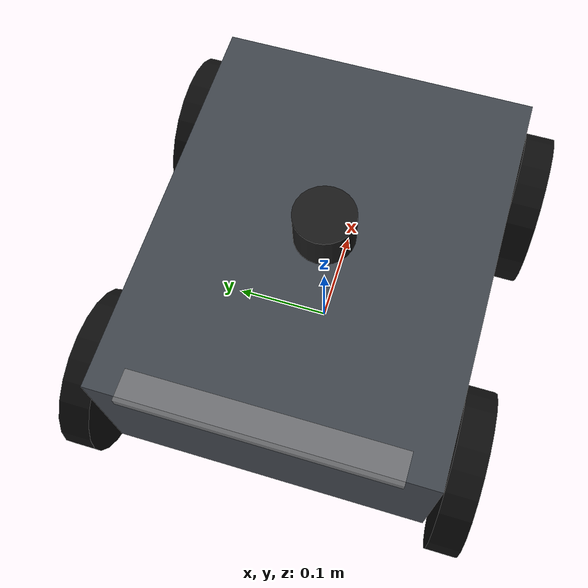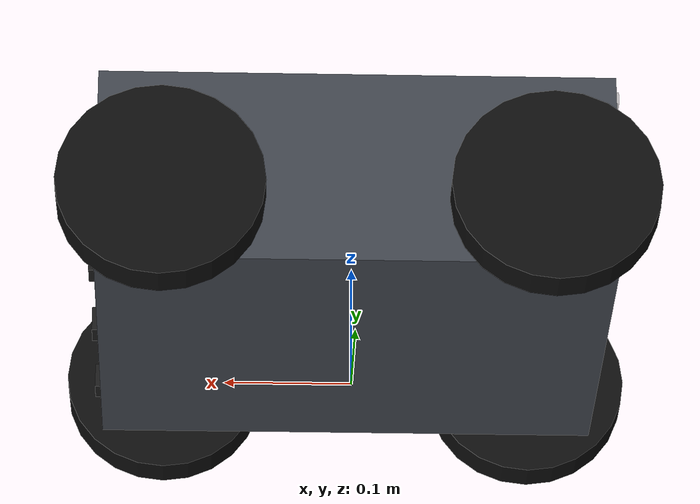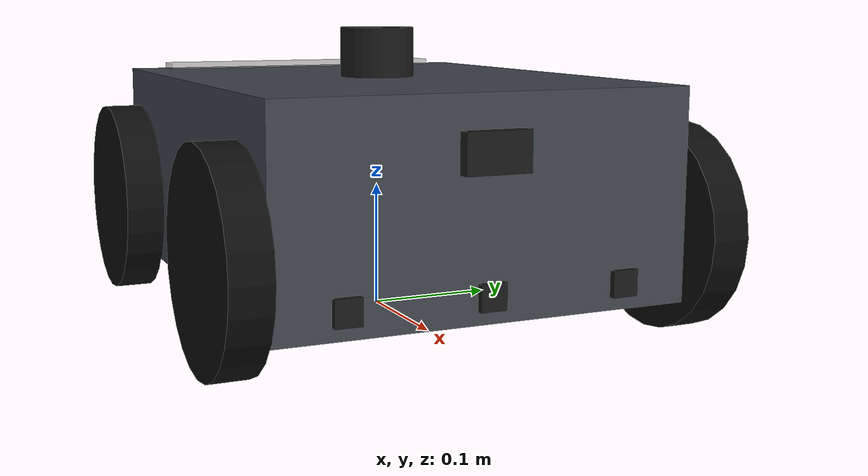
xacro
<?xml version="1.0"?>
<robot name="amr" xmlns:xacro="http://www.ros.org/wiki/xacro">

  <xacro:include filename="$(find amr_description)/urdf/amr_description.urdf.xacro"/>
  <xacro:include filename="$(find amr_description)/urdf/amr_gazebo.xacro"/>

</robot>

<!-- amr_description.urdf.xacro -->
<robot name="amr" xmlns:xacro="http://www.ros.org/wiki/xacro">

  <!-- Chassis (simple box) -->
  <xacro:property name="chassis_length" value="0.40"/>   <!-- x: front-back -->
  <xacro:property name="chassis_width"  value="0.32"/>   <!-- y: left-right -->
  <xacro:property name="chassis_height" value="0.16"/>   <!-- z: up-down -->
  <xacro:property name="chassis_mass"   value="5.0"/>    <!-- kg -->

  <!-- Wheels (all four share the same geometry) -->
  <xacro:property name="wheel_radius" value="0.08"/>
  <xacro:property name="wheel_width"  value="0.03"/>
  <xacro:property name="wheel_mass"   value="0.3"/>      <!-- kg, each -->
  <xacro:property name="wheel_ygap"   value="0.004"/>    <!-- chassis side -> wheel inner face gap -->
  <xacro:property name="wheel_zoff" value="0.03"/>

  <!-- Derived - don't edit, this is computed from the numbers above -->
  <xacro:property name="wheel_center_y"
                   value="${chassis_width/2 + wheel_ygap + wheel_width/2}"/>

  <!-- Wheelbase - distance from chassis centre to EACH axle (both
       front and rear), along x. Rear axle = driven, front = passive. -->
  <xacro:property name="wheel_axle_xoff" value="0.15"/>

  <!-- Sensor mount helpers -->
  <xacro:property name="lidar_radius" value="0.03"/>
  <xacro:property name="lidar_height" value="0.04"/>
  <xacro:property name="lidar_stand_height" value="0.02"/>

  <xacro:property name="pi_const" value="3.14159265359"/>

  <!-- ===========================================================
       MATERIALS - pure visual, RViz-only colours
       =========================================================== -->
  <material name="chassis_grey"><color rgba="0.25 0.27 0.30 1.0"/></material>
  <material name="wheel_black"><color rgba="0.05 0.05 0.05 1.0"/></material>
  <material name="sensor_dark"><color rgba="0.1 0.1 0.1 1.0"/></material>
  <material name="led_off"><color rgba="0.6 0.6 0.6 0.6"/></material>

  <!-- ===========================================================
       BASE FOOTPRINT (REP-105 ground-projection frame, massless)
       =========================================================== -->
  <link name="base_footprint"/>

  <joint name="base_footprint_joint" type="fixed">
    <parent link="base_footprint"/>
    <child  link="base_link"/>
    <!-- This single number lifts the whole robot so the wheels land
         exactly on the ground plane. -->
    <origin xyz="0 0 ${wheel_radius + wheel_zoff}" rpy="0 0 0"/>
  </joint>

  <!-- ===========================================================
       BASE LINK (chassis) - simple box
       =========================================================== -->
  <link name="base_link">
    <visual>
      <origin xyz="0 0 0" rpy="0 0 0"/>
      <geometry>
        <box size="${chassis_length} ${chassis_width} ${chassis_height}"/>
      </geometry>
      <material name="chassis_grey"/>
    </visual>
    <collision>
      <origin xyz="0 0 0" rpy="0 0 0"/>
      <geometry>
        <box size="${chassis_length} ${chassis_width} ${chassis_height}"/>
      </geometry>
    </collision>
    <inertial>
      <origin xyz="0 0 0" rpy="0 0 0"/>
      <mass value="${chassis_mass}"/>
      <!-- Solid-box inertia formula, computed automatically from the
           dimensions above - change chassis_* and this stays correct. -->
      <inertia
        ixx="${(1/12)*chassis_mass*(chassis_width*chassis_width + chassis_height*chassis_height)}"
        iyy="${(1/12)*chassis_mass*(chassis_length*chassis_length + chassis_height*chassis_height)}"
        izz="${(1/12)*chassis_mass*(chassis_length*chassis_length + chassis_width*chassis_width)}"
        ixy="0" ixz="0" iyz="0"/>
    </inertial>
  </link>

  <xacro:macro name="amr_wheel" params="name x_pos y_pos">
    <link name="${name}_wheel_link">
      <visual>
        <!-- Rotate cylinder's native Z-axis to align with robot Y
             (REP-103: y=left) - must match the joint axis below. -->
        <origin xyz="0 0 0" rpy="${pi_const/2} 0 0"/>
        <geometry>
          <cylinder radius="${wheel_radius}" length="${wheel_width}"/>
        </geometry>
        <material name="wheel_black"/>
      </visual>
      <collision>
        <origin xyz="0 0 0" rpy="${pi_const/2} 0 0"/>
        <geometry>
          <cylinder radius="${wheel_radius}" length="${wheel_width}"/>
        </geometry>
      </collision>
      <inertial>
        <origin xyz="0 0 0" rpy="${pi_const/2} 0 0"/>
        <mass value="${wheel_mass}"/>
        <inertia
          ixx="${(1/12)*wheel_mass*(3*wheel_radius*wheel_radius + wheel_width*wheel_width)}"
          iyy="${(1/12)*wheel_mass*(3*wheel_radius*wheel_radius + wheel_width*wheel_width)}"
          izz="${0.5*wheel_mass*wheel_radius*wheel_radius}"
          ixy="0" ixz="0" iyz="0"/>
      </inertial>
    </link>

    <joint name="${name}_wheel_joint" type="continuous">
      <parent link="base_link"/>
      <child  link="${name}_wheel_link"/>
      <origin xyz="${x_pos} ${y_pos} ${-wheel_zoff}" rpy="0 0 0"/>
      <axis xyz="0 1 0"/>
      <limit effort="20" velocity="10"/>
      <dynamics damping="0.1" friction="0.0"/>
    </joint>
  </xacro:macro>

  <!-- REAR pair - DRIVEN (differential drive, wired up in amr_gazebo.xacro) -->
  <xacro:amr_wheel name="rear_left"   x_pos="${-wheel_axle_xoff}" y_pos="${wheel_center_y}"/>
  <xacro:amr_wheel name="rear_right"  x_pos="${-wheel_axle_xoff}" y_pos="${-wheel_center_y}"/>

  <!-- FRONT pair - PASSIVE/free-rolling, no motor, not in ros2_control -->
  <xacro:amr_wheel name="front_left"  x_pos="${wheel_axle_xoff}"  y_pos="${wheel_center_y}"/>
  <xacro:amr_wheel name="front_right" x_pos="${wheel_axle_xoff}"  y_pos="${-wheel_center_y}"/>

  <!-- 2D LIDAR - top-centre, on a small stand -->
  <link name="lidar_link">
    <visual>
      <geometry><cylinder radius="${lidar_radius}" length="${lidar_height}"/></geometry>
      <material name="sensor_dark"/>
    </visual>
    <collision>
      <geometry><cylinder radius="${lidar_radius}" length="${lidar_height}"/></geometry>
    </collision>
    <inertial>
      <mass value="0.15"/>
      <inertia ixx="0.0001" iyy="0.0001" izz="0.0001" ixy="0" ixz="0" iyz="0"/>
    </inertial>
  </link>
  <joint name="lidar_joint" type="fixed">
    <parent link="base_link"/>
    <child  link="lidar_link"/>
    <origin xyz="0 0 ${chassis_height/2 + lidar_stand_height}" rpy="0 0 0"/>
  </joint>

  <!-- IMU - chassis centre (cleanest for orientation math) -->
  <link name="imu_link">
    <inertial>
      <mass value="0.01"/>
      <inertia ixx="1e-6" iyy="1e-6" izz="1e-6" ixy="0" ixz="0" iyz="0"/>
    </inertial>
  </link>
  <joint name="imu_joint" type="fixed">
    <parent link="base_link"/>
    <child  link="imu_link"/>
    <origin xyz="0 0 0" rpy="0 0 0"/>
  </joint>

  <!-- CAMERA - front face, upper-middle height -->
  <link name="camera_link">
    <visual>
      <geometry><box size="0.02 0.05 0.03"/></geometry>
      <material name="sensor_dark"/>
    </visual>
    <collision>
      <geometry><box size="0.02 0.05 0.03"/></geometry>
    </collision>
    <inertial>
      <mass value="0.05"/>
      <inertia ixx="1e-5" iyy="1e-5" izz="1e-5" ixy="0" ixz="0" iyz="0"/>
    </inertial>
  </link>
  <joint name="camera_joint" type="fixed">
    <parent link="base_link"/>
    <child  link="camera_link"/>
    <origin xyz="${chassis_length/2} 0 ${chassis_height/4}" rpy="0 0 0"/>
  </joint>

  <link name="camera_optical_link"/>
  <joint name="camera_optical_joint" type="fixed">
    <parent link="camera_link"/>
    <child  link="camera_optical_link"/>
    <origin xyz="0 0 0" rpy="${-pi_const/2} 0 ${-pi_const/2}"/>
  </joint>

  <!-- ULTRASONIC RING - 3x across the front face -->
  <xacro:macro name="ultrasonic" params="name y_pos">
    <link name="${name}_link">
      <visual>
        <geometry><box size="0.01 0.02 0.02"/></geometry>
        <material name="sensor_dark"/>
      </visual>
      <collision>
        <geometry><box size="0.01 0.02 0.02"/></geometry>
      </collision>
      <inertial>
        <mass value="0.01"/>
        <inertia ixx="1e-6" iyy="1e-6" izz="1e-6" ixy="0" ixz="0" iyz="0"/>
      </inertial>
    </link>
    <joint name="${name}_joint" type="fixed">
      <parent link="base_link"/>
      <child  link="${name}_link"/>
      <origin xyz="${chassis_length/2} ${y_pos} ${-chassis_height/2 + 0.02}" rpy="0 0 0"/>
    </joint>
  </xacro:macro>

  <xacro:ultrasonic name="ultrasonic_front_left"   y_pos="${chassis_width/3}"/>
  <xacro:ultrasonic name="ultrasonic_front_center" y_pos="0"/>
  <xacro:ultrasonic name="ultrasonic_front_right"  y_pos="${-chassis_width/3}"/>

  <!-- LED STATUS STRIP - purely aesthetic geometry. The actual
       point-light that gets driven idle/nav/charging/error colours
       is declared in amr_gazebo.xacro, attached to THIS link. -->
  <link name="led_strip_link">
    <visual>
      <geometry><box size="0.03 ${chassis_width*0.8} 0.01"/></geometry>
      <material name="led_off"/>
    </visual>
    <inertial>
      <mass value="0.02"/>
      <inertia ixx="1e-6" iyy="1e-6" izz="1e-6" ixy="0" ixz="0" iyz="0"/>
    </inertial>
  </link>
  <joint name="led_strip_joint" type="fixed">
    <parent link="base_link"/>
    <child  link="led_strip_link"/>
    <origin xyz="${-chassis_length/2 + 0.01} 0 ${chassis_height/2}" rpy="0 0 0"/>
  </joint>

</robot>
